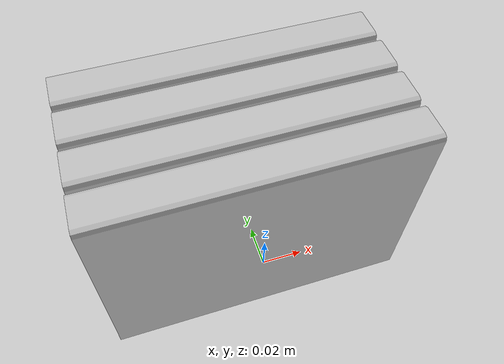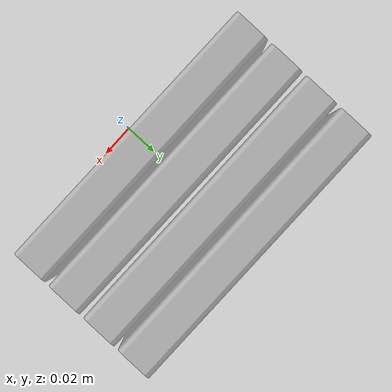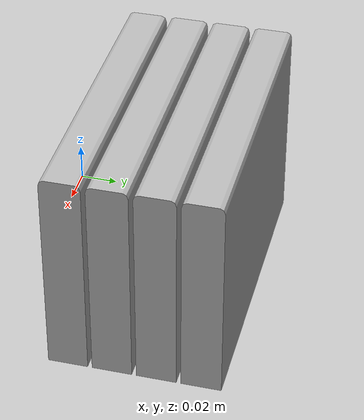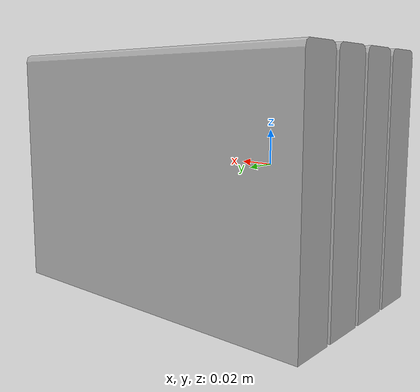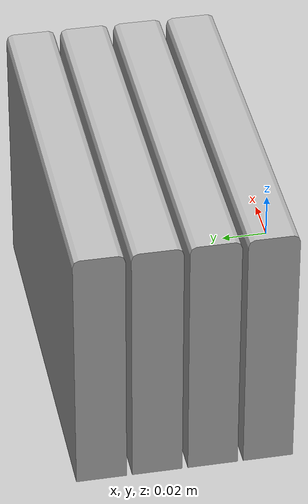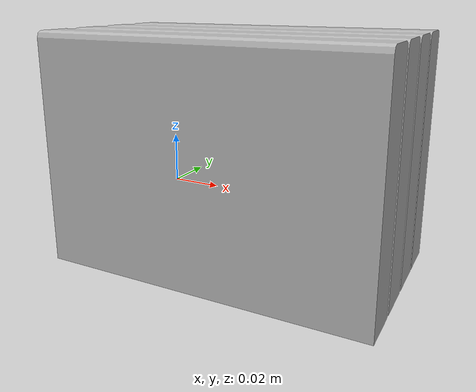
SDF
<?xml version="1.0" ?>
<sdf version="1.4">
  <model name="shelf1_book1_h2">
    <link name="body">
      <pose>0 0 0 0 0 0</pose>
      <inertial>
        <pose>   0.003143   0.053829   0.000435 0 0 0</pose>
        <mass>0.5</mass>
        <inertia>
          <ixx>0.01</ixx>
          <ixy>0</ixy>
          <ixz>0</ixz>
          <iyy>0.01</iyy>
          <iyz>0</iyz>
          <izz>0.01</izz>
        </inertia>
      </inertial>
      <collision name="collision">
        <geometry>
          <mesh>
            <uri>model://bookshelf/shelf1_items/book1_h2/book1_h2.dae</uri>
          </mesh>
        </geometry>
      </collision>
      <visual name="visual">
        <geometry>
          <mesh>
            <uri>model://bookshelf/shelf1_items/book1_h2/book1_h2.dae</uri>
          </mesh>
        </geometry>
      </visual>
    </link>
  </model>
</sdf>
